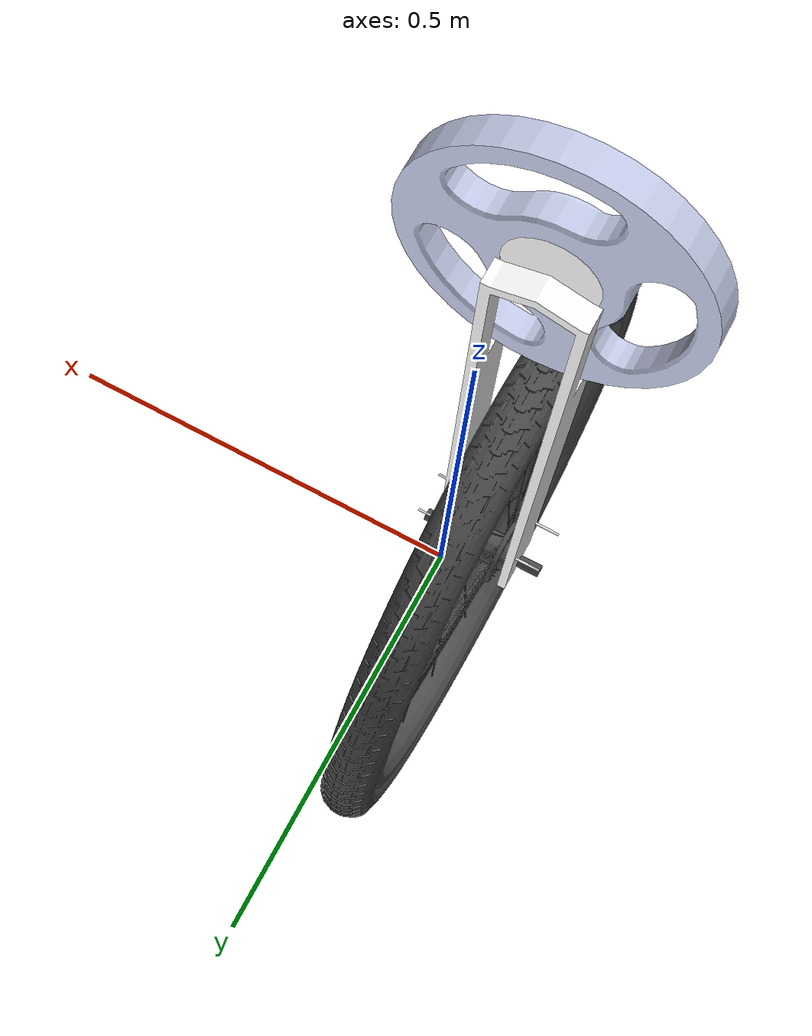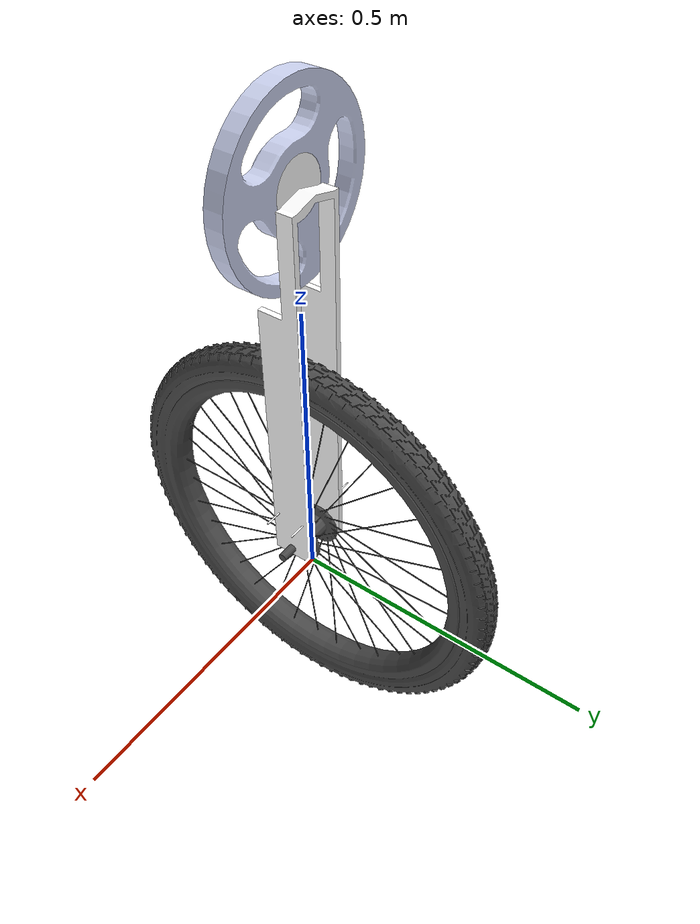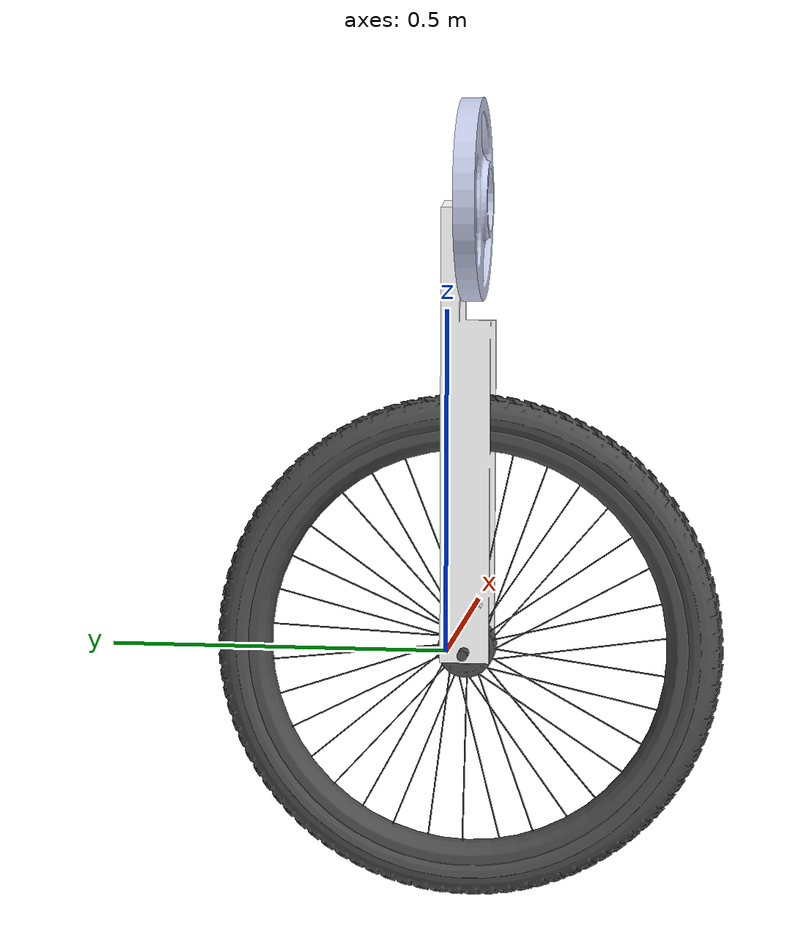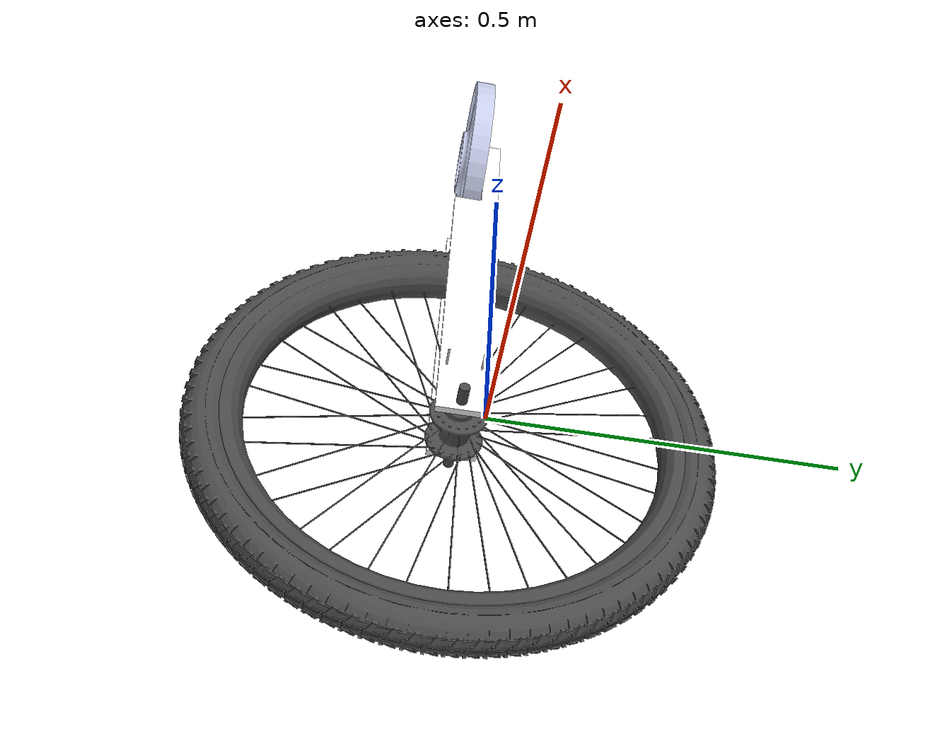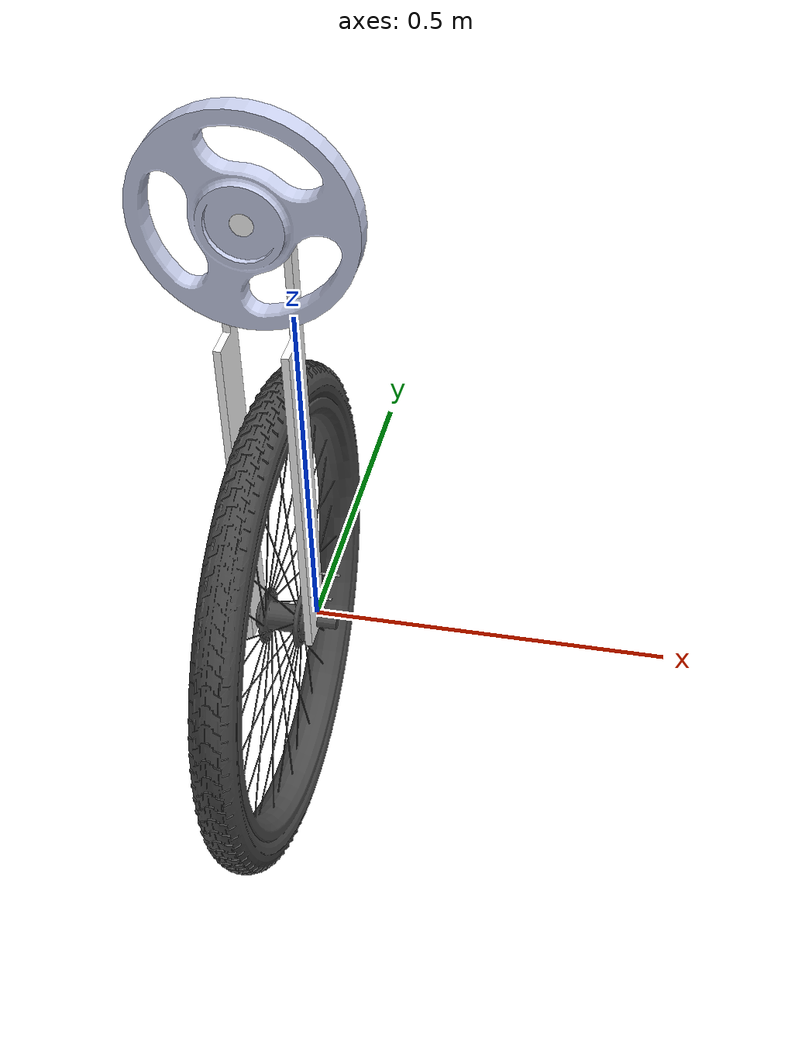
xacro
<?xml version="1.0" encoding="utf-8"?>
<robot
  name="mybot">
  <!-- xyz="-0.0381 0.34769 0.032884" -->
  <link
    name="base_link">
    <inertial>
      <origin
        xyz = "0 0 0.5"
        rpy="0 0 0" />
      <mass
        value="0.93072" />
      <inertia
        ixx="0.041016"
        ixy="-1.4648E-18"
        ixz="6.1909E-20"
        iyy="0.0018491"
        iyz="0.00043466"
        izz="0.042192" />
    </inertial>
    <visual>
      <origin
        xyz="0 0 0"
        rpy="0 0 0" />
      <geometry>
        <mesh
          filename="package://mybot/meshes/base_link.STL" />
      </geometry>
      <material
        name="">
        <color
          rgba="1 1 1 1" />
      </material>
    </visual>
    <collision>
      <origin
        xyz="0 0 0"
        rpy="0 0 0" />
      <geometry>
        <mesh
          filename="package://mybot/meshes/base_link.STL" />
      </geometry>
    </collision>
  </link>
  <link
    name="fly_wheel_Link">
    <inertial>
      <origin
        xyz="1.1102E-16 0.016061 -1.6653E-16"
        rpy="0 0 0" />
      <mass
        value="1.1139" />
      <inertia
        ixx="0.0064385"
        ixy="3.4231E-18"
        ixz="6.8847E-18"
        iyy="0.012692"
        iyz="-4.2508E-19"
        izz="0.0064385" />
    </inertial>
    <visual>
      <origin
        xyz="0 0 0"
        rpy="0 0 0" />
      <geometry>
        <mesh
          filename="package://mybot/meshes/fly_wheel_Link.STL" />
      </geometry>
      <material
        name="">
        <color
          rgba="0.79216 0.81961 0.93333 1" />
      </material>
    </visual>
    <collision>
      <origin
        xyz="0 0 0"
        rpy="0 0 0" />
      <geometry>
        <mesh
          filename="package://mybot/meshes/fly_wheel_Link.STL" />
      </geometry>
    </collision>
  </link>
  <joint
    name="fly_wheel_joint"
    type="continuous">
    <origin
      xyz="-0.0381 -0.026125 0.65534"
      rpy="0 1.5018 -3.1416" />
    <parent
      link="base_link" />
    <child
      link="fly_wheel_Link" />
    <axis
      xyz="0 1 0" />
  </joint>
  <link
    name="wheel_link">
    <inertial>
      <origin
        xyz="-1.4229E-06 -1.3336E-05 -0.038081"
        rpy="0 0 0" />
      <mass
        value="2.7797" />
      <inertia
        ixx="0.13005"
        ixy="8.4658E-07"
        ixz="-7.4352E-09"
        iyy="0.13006"
        iyz="-7.7781E-09"
        izz="0.25812" />
    </inertial>
    <visual>
      <origin
        xyz="0 0 0"
        rpy="0 0 0" />
      <geometry>
        <mesh
          filename="package://mybot/meshes/wheel_link.STL" />
      </geometry>
      <material
        name="">
        <color
          rgba="0.29412 0.29412 0.29412 1" />
      </material>
    </visual>
    <collision>
      <origin
        xyz="0 0 0"
        rpy="0 0 0" />
      <geometry>
        <mesh
          filename="package://mybot/meshes/wheel_link.STL" />
      </geometry>
    </collision>
  </link>
  <joint
    name="wheel_joint"
    type="continuous">
    <origin
      xyz="0 -0.035 0.01524"
      rpy="1.5708 0.67273 1.5708" />
    <parent
      link="base_link" />
    <child
      link="wheel_link" />
    <axis
      xyz="0 0 1" />
  </joint>

  <!--Add transmission for joints of my bot here-->
  <transmission name="trans_fly_wheel_joint">
    <type>transmission_interface/SimpleTransmission</type>
    <joint name="fly_wheel_joint">
        <hardwareInterface>hardwareInterface/EffortJointInterface</hardwareInterface>
    </joint>
    <actuator name="motor_fly_wheel_joint">
        <hardwareInterface>hardware_interface/EffortJointInterface</hardwareInterface>
        <mechanicalReduction>1</mechanicalReduction>
    </actuator>
  </transmission>
  <transmission name="trans_wheel_joint">
    <type>transmission_interface/SimpleTransmission</type>
    <joint name = "wheel_joint">
        <hardwareInterface>hardwareInterface/EffortJointInterface</hardwareInterface>
    </joint>
    <actuator name="motor_wheel_joint">
        <hardwareInterface>hardware_interface/EffortJointInterface</hardwareInterface>
        <mechanicalReduction>1</mechanicalReduction>
    </actuator>
  </transmission>

  <!--Add a gazebo controller plugin here-->
  <gazebo>
    <plugin name="gazebo_ros_control" filename="libgazebo_ros_control.so">
    </plugin>
  </gazebo>
</robot>
